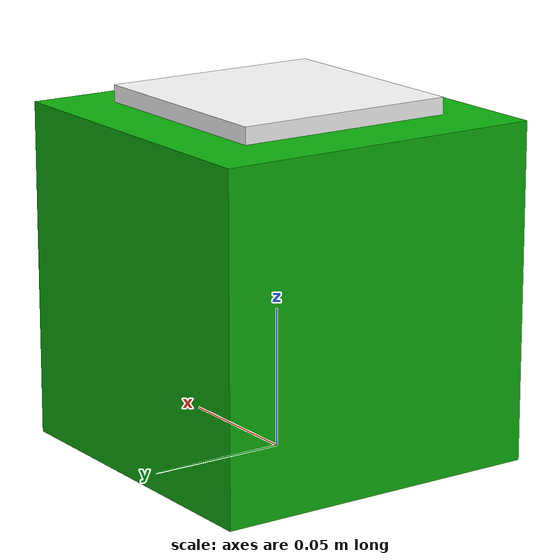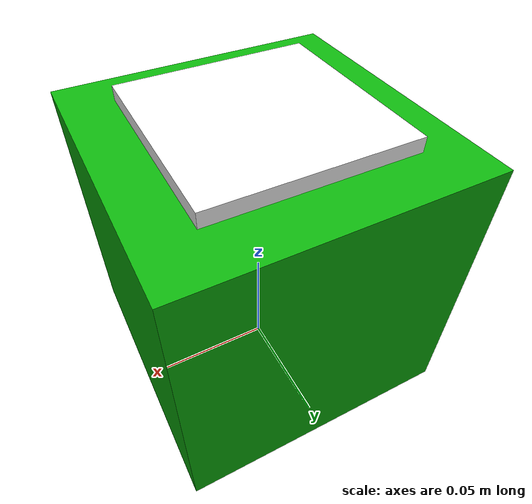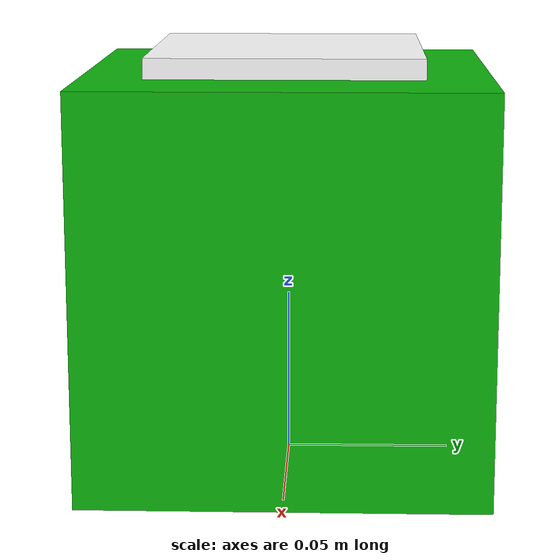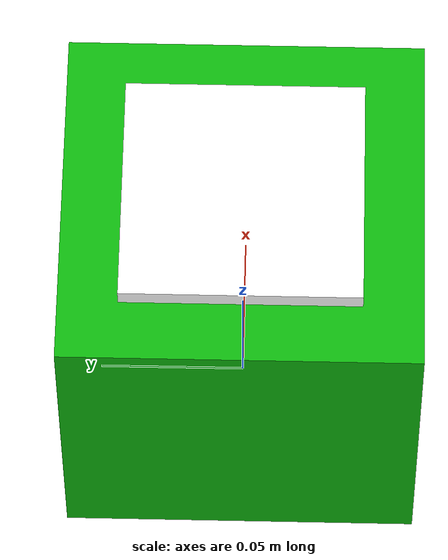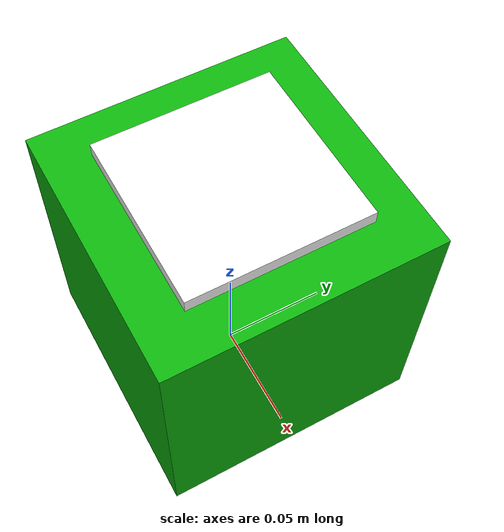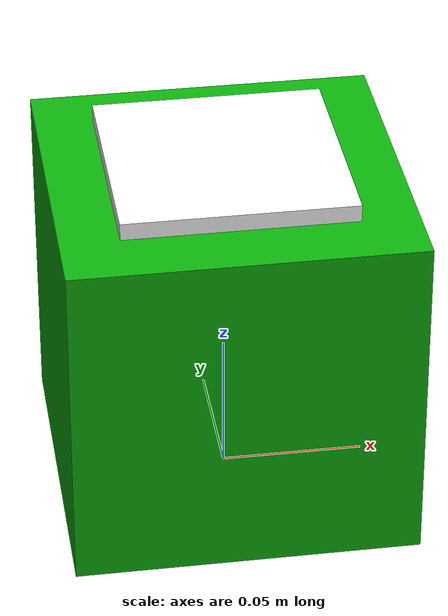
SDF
<?xml version="1.0" ?>
<sdf version="1.9">
  <model name="apriltag_column_2">
    <static>true</static>
    <link name="link">
      <collision name="pillar_col"><pose>0 0 0.06 0 0 0</pose>
        <geometry><box><size>0.12 0.12 0.12</size></box></geometry></collision>
      <visual name="pillar_vis"><pose>0 0 0.06 0 0 0</pose>
        <geometry><box><size>0.12 0.12 0.12</size></box></geometry>
        <material><ambient>0.05 0.7 0.05 1</ambient><diffuse>0.05 0.7 0.05 1</diffuse><specular>0.2 0.2 0.2 1</specular></material></visual>
      <!-- AprilTag flat on the TOP surface (facing up), read by the gripper/wrist camera -->
      <visual name="tag_vis"><pose>0 0 0.124 0 0 0</pose>
        <geometry><box><size>0.08 0.08 0.006</size></box></geometry>
        <material><diffuse>1 1 1 1</diffuse>
          <pbr><metal><albedo_map>tag36h11_1.png</albedo_map><metalness>0</metalness><roughness>1</roughness></metal></pbr>
        </material></visual>
    </link>
  </model>
</sdf>
